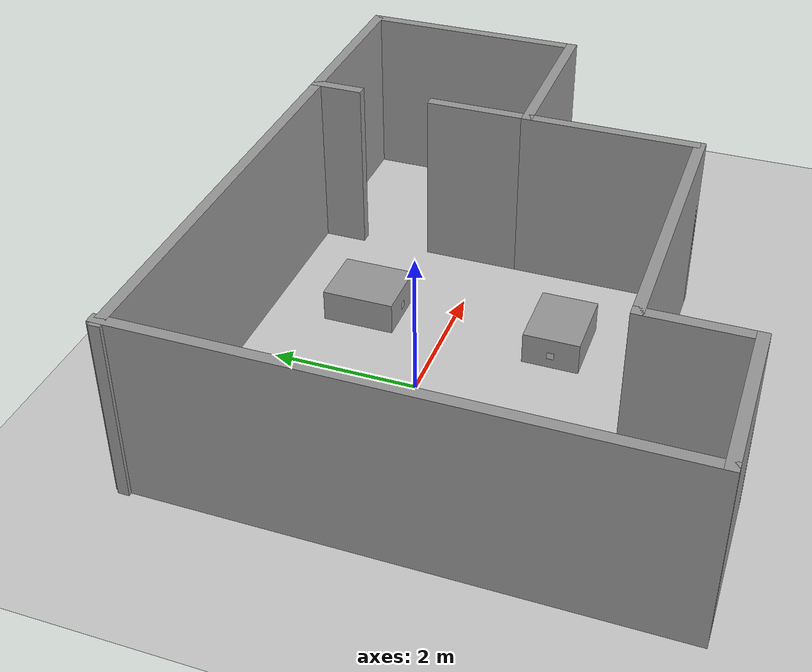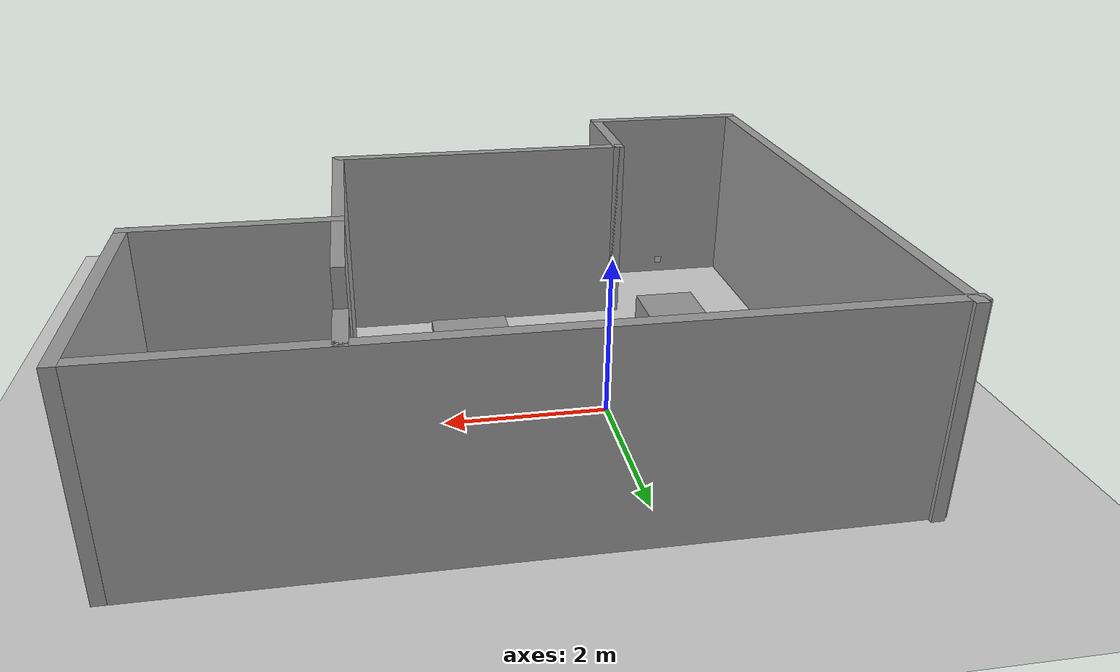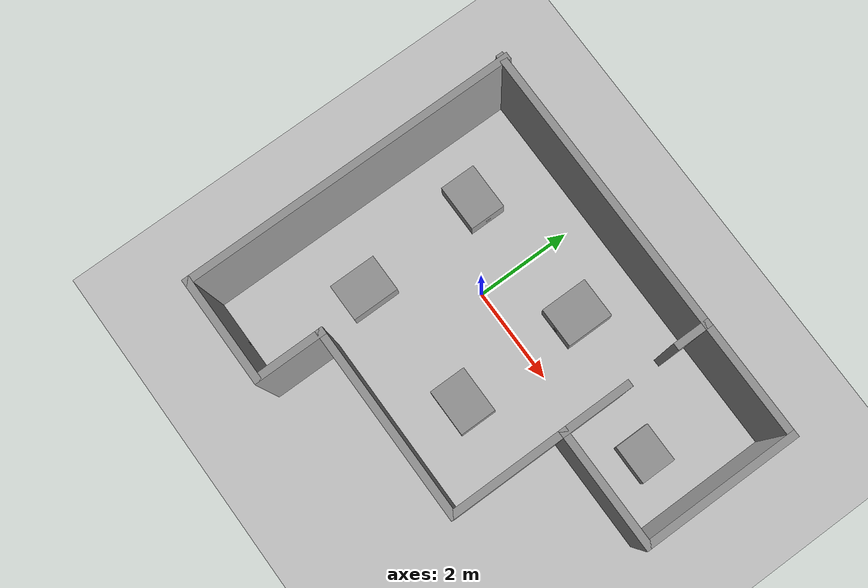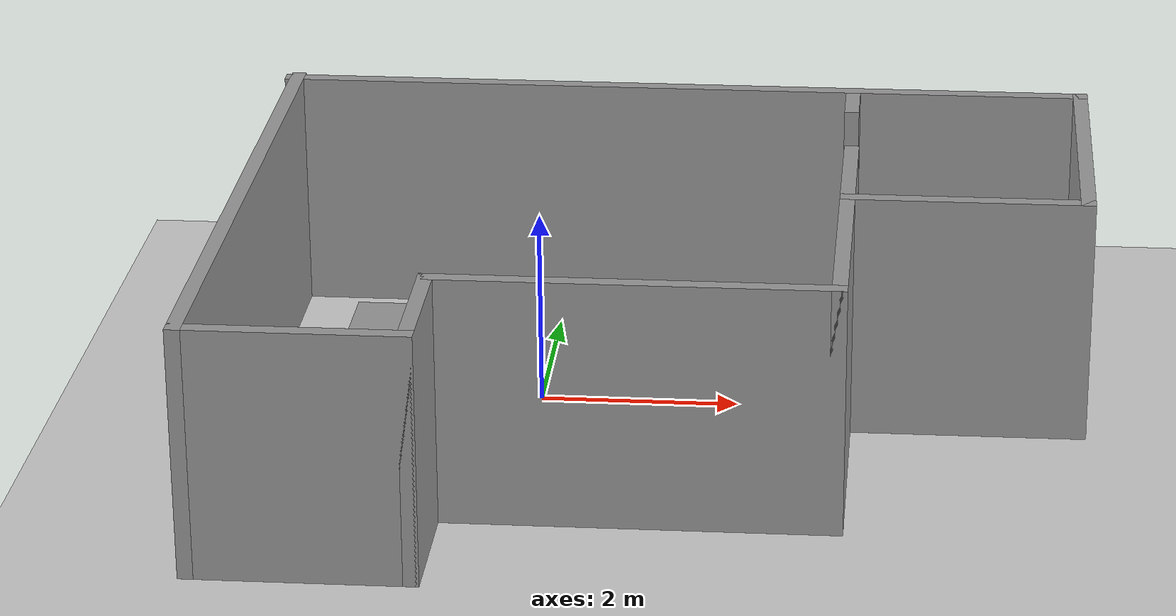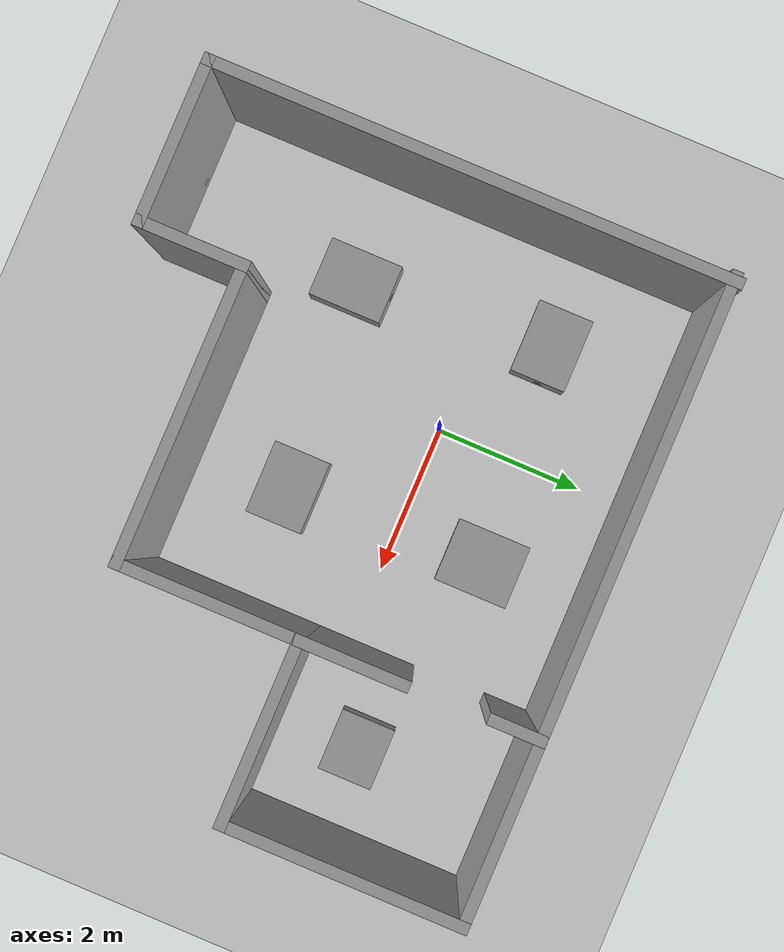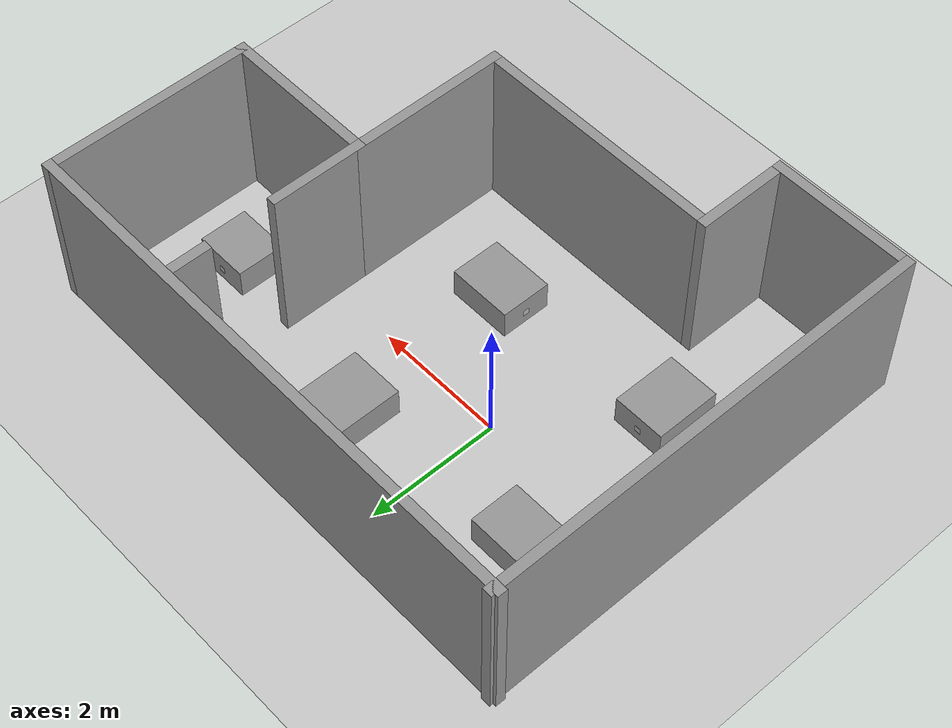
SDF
<sdf version="1.7">
 <world name="default">
  <light name="sun" type="directional">
   <pose>0 0 10 0 -0 0</pose>
   <diffuse>0.8 0.8 0.8 1</diffuse>
   <specular>0.2 0.2 0.2 1</specular>
   <attenuation>
    <range>1000</range>
    <constant>0.9</constant>
    <linear>0.01</linear>
    <quadratic>0.001</quadratic>
   </attenuation>
   <direction>-0.5 0.1 -0.9</direction>
   <spot><inner_angle>0</inner_angle><outer_angle>0</outer_angle><falloff>0</falloff></spot>
  </light>
  <model name="ground_plane">
   <static>1</static>
   <link name="link">
    <collision name="collision">
     <geometry><plane><normal>0 0 1</normal><size>100 100</size></plane></geometry>
     <surface>
      <contact><collide_bitmask>65535</collide_bitmask></contact>
      <friction><ode><mu>100</mu><mu2>50</mu2></ode></friction>
     </surface>
    </collision>
    <visual name="visual">
     <cast_shadows>0</cast_shadows>
     <geometry><plane><normal>0 0 1</normal><size>100 100</size></plane></geometry>
     <material>
      <script><uri>file://media/materials/scripts/gazebo.material</uri><name>Gazebo/Grey</name></script>
     </material>
    </visual>
   </link>
  </model>
  <gravity>0 0 -9.8</gravity>
  <magnetic_field>6e-06 2.3e-05 -4.2e-05</magnetic_field>
  <atmosphere type="adiabatic"/>
  <physics type="ode">
   <max_step_size>0.001</max_step_size>
   <real_time_factor>1</real_time_factor>
   <real_time_update_rate>1000</real_time_update_rate>
  </physics>
  <scene><ambient>0.4 0.4 0.4 1</ambient><background>0.7 0.7 0.7 1</background><shadows>1</shadows></scene>
  <spherical_coordinates>
   <surface_model>EARTH_WGS84</surface_model>
   <latitude_deg>0</latitude_deg>
   <longitude_deg>0</longitude_deg>
   <elevation>0</elevation>
   <heading_deg>0</heading_deg>
  </spherical_coordinates>
  <model name="aruco_world_2">
   <pose>1.26422 -0.281157 0 0 -0 0</pose>
   <link name="Wall_1">
    <collision name="Wall_1_Collision">
     <geometry><box><size>7 0.15 2.5</size></box></geometry>
     <pose>0 0 1.25 0 -0 0</pose>
    </collision>
    <visual name="Wall_1_Visual">
     <pose>0 0 1.25 0 -0 0</pose>
     <geometry><box><size>7 0.15 2.5</size></box></geometry>
     <material>
      <script><uri>file://media/materials/scripts/gazebo.material</uri><name>Gazebo/Grey</name></script>
      <ambient>1 1 1 1</ambient>
     </material>
     <meta><layer>0</layer></meta>
    </visual>
    <pose>-4.125 -0.511483 0 0 -0 -1.5708</pose>
   </link>
   <link name="Wall_10">
    <collision name="Wall_10_Collision">
     <geometry><box><size>1.5 0.15 2.5</size></box></geometry>
     <pose>0 0 1.25 0 -0 0</pose>
    </collision>
    <visual name="Wall_10_Visual">
     <pose>0 0 1.25 0 -0 0</pose>
     <geometry><box><size>1.5 0.15 2.5</size></box></geometry>
     <material>
      <script><uri>file://media/materials/scripts/gazebo.material</uri><name>Gazebo/Grey</name></script>
      <ambient>1 1 1 1</ambient>
     </material>
     <meta><layer>0</layer></meta>
    </visual>
    <pose>1.825 0.438517 0 0 -0 1.5708</pose>
   </link>
   <link name="Wall_12">
    <collision name="Wall_12_Collision">
     <geometry><box><size>0.75 0.15 2.5</size></box></geometry>
     <pose>0 0 1.25 0 -0 0</pose>
    </collision>
    <visual name="Wall_12_Visual">
     <pose>0 0 1.25 0 -0 0</pose>
     <geometry><box><size>0.75 0.15 2.5</size></box></geometry>
     <material>
      <script><uri>file://media/materials/scripts/gazebo.material</uri><name>Gazebo/Grey</name></script>
      <ambient>1 1 1 1</ambient>
     </material>
     <meta><layer>0</layer></meta>
    </visual>
    <pose>1.79644 2.56187 0 0 -0 -1.5708</pose>
   </link>
   <link name="Wall_2">
    <collision name="Wall_2_Collision">
     <geometry><box><size>2.25 0.15 2.5</size></box></geometry>
     <pose>0 0 1.25 0 -0 0</pose>
    </collision>
    <visual name="Wall_2_Visual">
     <pose>0 0 1.25 0 -0 0</pose>
     <geometry><box><size>2.25 0.15 2.5</size></box></geometry>
     <material>
      <script><uri>file://media/materials/scripts/gazebo.material</uri><name>Gazebo/Grey</name></script>
      <ambient>1 1 1 1</ambient>
     </material>
     <meta><layer>0</layer></meta>
    </visual>
    <pose>-3.075 -3.93648 0 0 -0 0</pose>
   </link>
   <link name="Wall_3">
    <collision name="Wall_3_Collision">
     <geometry><box><size>1.5 0.15 2.5</size></box></geometry>
     <pose>0 0 1.25 0 -0 0</pose>
    </collision>
    <visual name="Wall_3_Visual">
     <pose>0 0 1.25 0 -0 0</pose>
     <geometry><box><size>1.5 0.15 2.5</size></box></geometry>
     <material>
      <script><uri>file://media/materials/scripts/gazebo.material</uri><name>Gazebo/Grey</name></script>
      <ambient>1 1 1 1</ambient>
     </material>
     <meta><layer>0</layer></meta>
    </visual>
    <pose>-2.025 -3.26148 0 0 -0 1.5708</pose>
   </link>
   <link name="Wall_4">
    <collision name="Wall_4_Collision">
     <geometry><box><size>4 0.15 2.5</size></box></geometry>
     <pose>0 0 1.25 0 -0 0</pose>
    </collision>
    <visual name="Wall_4_Visual">
     <pose>0 0 1.25 0 -0 0</pose>
     <geometry><box><size>4 0.15 2.5</size></box></geometry>
     <material>
      <script><uri>file://media/materials/scripts/gazebo.material</uri><name>Gazebo/Grey</name></script>
      <ambient>1 1 1 1</ambient>
     </material>
     <meta><layer>0</layer></meta>
    </visual>
    <pose>-0.1 -2.58648 0 0 -0 0</pose>
   </link>
   <link name="Wall_5">
    <collision name="Wall_5_Collision">
     <geometry><box><size>2.5 0.15 2.5</size></box></geometry>
     <pose>0 0 1.25 0 -0 0</pose>
    </collision>
    <visual name="Wall_5_Visual">
     <pose>0 0 1.25 0 -0 0</pose>
     <geometry><box><size>2.5 0.15 2.5</size></box></geometry>
     <material>
      <script><uri>file://media/materials/scripts/gazebo.material</uri><name>Gazebo/Grey</name></script>
      <ambient>1 1 1 1</ambient>
     </material>
     <meta><layer>0</layer></meta>
    </visual>
    <pose>1.825 -1.41148 0 0 -0 1.5708</pose>
   </link>
   <link name="Wall_6">
    <collision name="Wall_6_Collision">
     <geometry><box><size>2.5 0.15 2.5</size></box></geometry>
     <pose>0 0 1.25 0 -0 0</pose>
    </collision>
    <visual name="Wall_6_Visual">
     <pose>0 0 1.25 0 -0 0</pose>
     <geometry><box><size>2.5 0.15 2.5</size></box></geometry>
     <material>
      <script><uri>file://media/materials/scripts/gazebo.material</uri><name>Gazebo/Grey</name></script>
      <ambient>1 1 1 1</ambient>
     </material>
     <meta><layer>0</layer></meta>
    </visual>
    <pose>3 -0.236483 0 0 -0 0</pose>
   </link>
   <link name="Wall_7">
    <collision name="Wall_7_Collision">
     <geometry><box><size>3.25 0.15 2.5</size></box></geometry>
     <pose>0 0 1.25 0 -0 0</pose>
    </collision>
    <visual name="Wall_7_Visual">
     <pose>0 0 1.25 0 -0 0</pose>
     <geometry><box><size>3.25 0.15 2.5</size></box></geometry>
     <material>
      <script><uri>file://media/materials/scripts/gazebo.material</uri><name>Gazebo/Grey</name></script>
      <ambient>1 1 1 1</ambient>
     </material>
     <meta><layer>0</layer></meta>
    </visual>
    <pose>4.175 1.31352 0 0 -0 1.5708</pose>
   </link>
   <link name="Wall_8">
    <collision name="Wall_8_Collision">
     <geometry><box><size>8.5 0.15 2.5</size></box></geometry>
     <pose>0 0 1.25 0 -0 0</pose>
    </collision>
    <visual name="Wall_8_Visual">
     <pose>0 0 1.25 0 -0 0</pose>
     <geometry><box><size>8.5 0.15 2.5</size></box></geometry>
     <material>
      <script><uri>file://media/materials/scripts/gazebo.material</uri><name>Gazebo/Grey</name></script>
      <ambient>1 1 1 1</ambient>
     </material>
     <meta><layer>0</layer></meta>
    </visual>
    <pose>-0 2.86352 0 0 -0 3.14159</pose>
   </link>
   <static>1</static>
  </model>
  <model name="unit_box">
   <pose>4.28194 0.633411 0.226162 0 -0 0</pose>
   <link name="link">
    <inertial>
     <mass>1</mass>
     <inertia>
      <ixx>0.166667</ixx>
      <ixy>0</ixy>
      <ixz>0</ixz>
      <iyy>0.166667</iyy>
      <iyz>0</iyz>
      <izz>0.166667</izz>
     </inertia>
    </inertial>
    <collision name="collision">
     <geometry><box><size>0.832624 0.738575 0.452325</size></box></geometry>
    </collision>
    <visual name="visual">
     <geometry><box><size>0.832624 0.738575 0.452325</size></box></geometry>
     <material>
      <script><name>Gazebo/Grey</name><uri>file://media/materials/scripts/gazebo.material</uri></script>
     </material>
    </visual>
   </link>
  </model>
  <model name="unit_box_clone">
   <pose>1.41027 1.20469 0.226162 0 -0 0</pose>
   <link name="link">
    <inertial>
     <mass>1</mass>
     <inertia>
      <ixx>0.166667</ixx>
      <ixy>0</ixy>
      <ixz>0</ixz>
      <iyy>0.166667</iyy>
      <iyz>0</iyz>
      <izz>0.166667</izz>
     </inertia>
    </inertial>
    <collision name="collision"><geometry><box><size>0.85861 1 0.452325</size></box></geometry></collision>
    <visual name="visual">
     <geometry><box><size>0.85861 1 0.452325</size></box></geometry>
     <material>
      <script><name>Gazebo/Grey</name><uri>file://media/materials/scripts/gazebo.material</uri></script>
     </material>
    </visual>
   </link>
  </model>
  <model name="unit_box_clone_clone">
   <pose>-1.57679 0.936246 0.226162 0 -0 0</pose>
   <link name="link">
    <inertial>
     <mass>1</mass>
     <inertia>
      <ixx>0.166667</ixx>
      <ixy>0</ixy>
      <ixz>0</ixz>
      <iyy>0.166667</iyy>
      <iyz>0</iyz>
      <izz>0.166667</izz>
     </inertia>
    </inertial>
    <collision name="collision"><geometry><box><size>1 0.761196 0.452325</size></box></geometry></collision>
    <visual name="visual">
     <geometry><box><size>1 0.761196 0.452325</size></box></geometry>
     <material>
      <script><name>Gazebo/Grey</name><uri>file://media/materials/scripts/gazebo.material</uri></script>
     </material>
    </visual>
   </link>
  </model>
  <model name="unit_box_clone_clone_0">
   <pose>1.48147 -1.53154 0.226162 0 -0 0</pose>
   <link name="link">
    <inertial>
     <mass>1</mass>
     <inertia>
      <ixx>0.166667</ixx>
      <ixy>0</ixy>
      <ixz>0</ixz>
      <iyy>0.166667</iyy>
      <iyz>0</iyz>
      <izz>0.166667</izz>
     </inertia>
    </inertial>
    <collision name="collision"><geometry><box><size>1 0.776782 0.452325</size></box></geometry></collision>
    <visual name="visual">
     <geometry><box><size>1 0.776782 0.452325</size></box></geometry>
     <material>
      <script><name>Gazebo/Grey</name><uri>file://media/materials/scripts/gazebo.material</uri></script>
     </material>
    </visual>
   </link>
  </model>
  <model name="unit_box_clone_clone_1">
   <pose>-1.37043 -1.77563 0.226162 0 -0 0</pose>
   <link name="link">
    <inertial>
     <mass>1</mass>
     <inertia>
      <ixx>0.166667</ixx>
      <ixy>0</ixy>
      <ixz>0</ixz>
      <iyy>0.166667</iyy>
      <iyz>0</iyz>
      <izz>0.166667</izz>
     </inertia>
    </inertial>
    <collision name="collision"><geometry><box><size>0.80146 1 0.452325</size></box></geometry></collision>
    <visual name="visual">
     <geometry><box><size>0.80146 1 0.452325</size></box></geometry>
     <material>
      <script><name>Gazebo/Grey</name><uri>file://media/materials/scripts/gazebo.material</uri></script>
     </material>
    </visual>
   </link>
  </model>
  <model name="Aruco0_model">
   <static>1</static>
   <link name="link">
    <collision name="collision"><geometry><box><size>0.1 0 0</size></box></geometry></collision>
    <visual name="visual">
     <geometry><box><size>0 0.1 0.1</size></box></geometry>
     <material>
      <script>
       <uri>model://aruco0/materials/scripts</uri>
       <uri>model://aruco0/materials/textures</uri>
       <name>Aruco0</name>
      </script>
     </material>
    </visual>
   </link>
   <pose>-1.84143 -4.14081 0.191871 0 0 -1.57672</pose>
  </model>
  <model name="Aruco1_model">
   <static>1</static>
   <link name="link">
    <collision name="collision"><geometry><box><size>0.1 0 0</size></box></geometry></collision>
    <visual name="visual">
     <geometry><box><size>0 0.1 0.1</size></box></geometry>
     <material>
      <script>
       <uri>model://aruco1/materials/scripts</uri>
       <uri>model://aruco1/materials/textures</uri>
       <name>Aruco1</name>
      </script>
     </material>
    </visual>
   </link>
   <pose>-1.3714 -1.27501 0.191871 0 0 -1.56513</pose>
  </model>
  <model name="Aruco2_model">
   <static>1</static>
   <link name="link">
    <collision name="collision"><geometry><box><size>0.1 0 0</size></box></geometry></collision>
    <visual name="visual">
     <geometry><box><size>0 0.1 0.1</size></box></geometry>
     <material>
      <script>
       <uri>model://aruco2/materials/scripts</uri>
       <uri>model://aruco2/materials/textures</uri>
       <name>Aruco2</name>
      </script>
     </material>
    </visual>
   </link>
   <pose>-1.07528 0.949516 0.211962 0 -0 0</pose>
  </model>
  <model name="Aruco3_model">
   <static>1</static>
   <link name="link">
    <collision name="collision"><geometry><box><size>0.1 0 0</size></box></geometry></collision>
    <visual name="visual">
     <geometry><box><size>0 0.1 0.1</size></box></geometry>
     <material>
      <script>
       <uri>model://aruco3/materials/scripts</uri>
       <uri>model://aruco3/materials/textures</uri>
       <name>Aruco3</name>
      </script>
     </material>
    </visual>
   </link>
   <pose>0.978756 -1.53243 0.191871 0 -0 0</pose>
  </model>
  <model name="Aruco4_model">
   <static>1</static>
   <link name="link">
    <collision name="collision"><geometry><box><size>0.1 0 0</size></box></geometry></collision>
    <visual name="visual">
     <geometry><box><size>0 0.1 0.1</size></box></geometry>
     <material>
      <script>
       <uri>model://aruco4/materials/scripts</uri>
       <uri>model://aruco4/materials/textures</uri>
       <name>Aruco4</name>
      </script>
     </material>
    </visual>
   </link>
   <pose>1.40876 0.702035 0.182195 0 0 -1.58275</pose>
  </model>
  <model name="Aruco5_model">
   <static>1</static>
   <link name="link">
    <collision name="collision"><geometry><box><size>0.1 0 0</size></box></geometry></collision>
    <visual name="visual">
     <geometry><box><size>0 0.1 0.1</size></box></geometry>
     <material>
      <script>
       <uri>model://aruco5/materials/scripts</uri>
       <uri>model://aruco5/materials/textures</uri>
       <name>Aruco5</name>
      </script>
     </material>
    </visual>
   </link>
   <pose>4.27742 1.00607 0.191871 0 0 -1.5817</pose>
  </model>
 </world>
</sdf>
